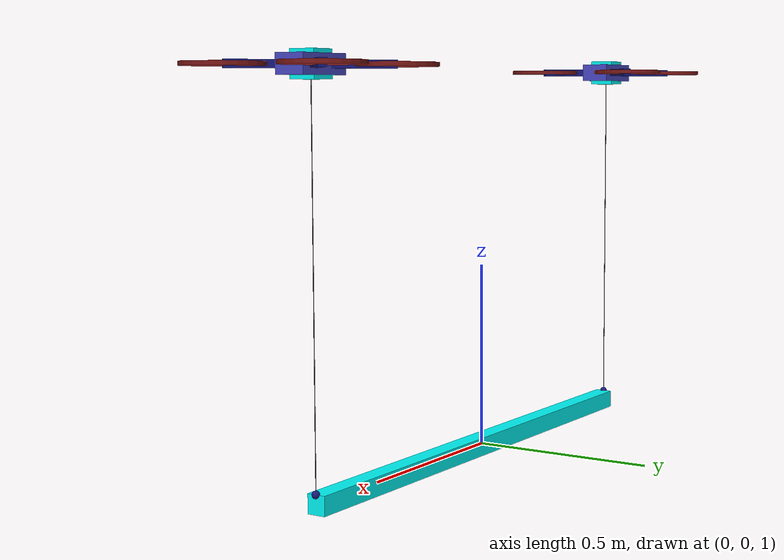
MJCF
<?xml version="1.0" ?>
<mujoco model="Quadcopter">
   <compiler angle="degree" coordinate="local" inertiafromgeom="true"/>
   <visual>
      <map fogstart="3.0" fogend="5.0" force="0.1" znear="0.1"/>
   </visual>
   <asset>
      <texture type="skybox" builtin="gradient" rgb1="1.0 1.0 1.0" rgb2="0.6 0.8 1.0" width="127" height="1278"/>
      <texture name="texplane" type="2d" builtin="checker" rgb1="0.2 0.3 0.4" rgb2=".1 0.15 0.2" width="512" height="512"/>
      <material name="MatPlane" texture="texplane" reflectance="0.5" texrepeat="1 1" texuniform="true"/>
   </asset>
   <worldbody>
      <geom name="ground" type="plane" size="5.0 5.0 0.02" friction="1.0" pos="0.0 0.0 0.0" rgba="0.8 0.9 0.8 1.0" material="MatPlane"/>
      <light directional="true" diffuse=".9 .9 .9" specular=".3 .3 .3" pos="0 0 4.0" dir="0 0.15 -1"/>
      <body name="pyld" pos="0.0 0.0 1.0" quat="1 0 0 0">
         <geom name="pyld" type="box" pos="0.0 0.0 0.0" quat="1 0 0 0" size="0.75 0.025 0.025" mass="1.0" density="1000" rgba="0.0 1 1 1.0"/>
         <site name="pyld_poc1" type="sphere" pos="0.75 0.0 0.025" quat="1 0 0 0" size="0.01" rgba="0.1 0.1 0.5 1.0"/>
         <site name="pyld_poc2" type="sphere" pos="-0.75 0.0 0.025" quat="1 0 0 0" size="0.01" rgba="0.1 0.1 0.5 1.0"/>
         <joint name="pyld_joint" type="free"/>
         <body name="cable_0" pos="0.75 0.0 0.535" quat="1 0 0 0">
            <joint name="cable_link_joint_0" type="ball" limited="false" pos="0.0 0.0 -0.5" damping="0.0001" stiffness="1e-05"/>
            <geom name="cable_cylinder_0" type="cylinder" size="0.001 0.5" pos="0.0 0.0 0.0" mass="0.001" density="50" rgba="0.2 0.2 0.2 1.0"/>
            <body name="quad0" pos="0.0 0.0 0.5" quat="1 0 0 0">
               <geom name="quad0_geom" type="box" pos="0.0 0.0 0.0" quat="1 0 0 0" size="0.08 0.04 0.025" mass="0.75" density="1000" rgba="0.3 0.3 0.8 1.0"/>
               <geom name="quad0_rotor_arm_geom_0" type="box" pos="0.0 0.0 0.0" quat="0.92388 0 0 0.382683" size="0.2 0.01 0.01" mass="0.01" density="1000" rgba="0.1 0.1 0.5 1.0"/>
               <geom name="quad0_rotor_prop_geom_0" type="cylinder" size="0.1 0.005" pos="0.1414213562373095 0.14142135623730953 0.0" mass="0.05" density="1000" rgba="0.5 0.1 0.1 1.0"/>
               <geom name="quad0_rotor_arm_geom_1" type="box" pos="0.0 0.0 0.0" quat="0.382683 0 0 0.92388" size="0.2 0.01 0.01" mass="0.01" density="1000" rgba="0.1 0.1 0.5 1.0"/>
               <geom name="quad0_rotor_prop_geom_1" type="cylinder" size="0.1 0.005" pos="-0.1414213562373095 0.14142135623730953 0.0" mass="0.05" density="1000" rgba="0.5 0.1 0.1 1.0"/>
               <geom name="quad0_rotor_arm_geom_2" type="box" pos="0.0 0.0 0.0" quat="-0.382683 0 0 0.92388" size="0.2 0.01 0.01" mass="0.01" density="1000" rgba="0.1 0.1 0.5 1.0"/>
               <geom name="quad0_rotor_prop_geom_2" type="cylinder" size="0.1 0.005" pos="-0.1414213562373095 -0.1414213562373095 0.0" mass="0.05" density="1000" rgba="0.5 0.1 0.1 1.0"/>
               <geom name="quad0_rotor_arm_geom_3" type="box" pos="0.0 0.0 0.0" quat="-0.92388 0 0 0.382683" size="0.2 0.01 0.01" mass="0.01" density="1000" rgba="0.1 0.1 0.5 1.0"/>
               <geom name="quad0_rotor_prop_geom_3" type="cylinder" size="0.1 0.005" pos="0.14142135623730948 -0.14142135623730956 0.0" mass="0.05" density="1000" rgba="0.5 0.1 0.1 1.0"/>
               <site name="quad0_end1" type="sphere" pos="0.0 0.0 0.0" quat="1 0 0 0" size="0.01" rgba="0.1 0.1 0.5 1.0"/>
               <site name="quad0_thrust" type="box" pos="0.0 0.0 0.0" quat="1 0 0 0" size="0.035 0.035 0.035" rgba="0.0 1 1 1.0"/>
               <site name="quad0_Mx" type="box" pos="0.0 0.0 0.0" quat="1 0 0 0" size="0.06 0.035 0.025" rgba="0.0 1 1 1.0"/>
               <site name="quad0_My" type="box" pos="0.0 0.0 0.0" quat="1 0 0 0" size="0.06 0.035 0.025" rgba="0.0 1 1 1.0"/>
               <site name="quad0_Mz" type="box" pos="0.0 0.0 0.0" quat="1 0 0 0" size="0.06 0.035 0.025" rgba="0.0 1 1 1.0"/>
               <joint name="cable_quad_joint_0" type="ball" limited="false" pos="0.0 0.0 0.0" damping="0.0001" stiffness="1e-05"/>
            </body>
         </body>
         <body name="cable_1" pos="-0.75 0.0 0.535" quat="1 0 0 0">
            <joint name="cable_link_joint_1" type="ball" limited="false" pos="0.0 0.0 -0.5" damping="1e-05" stiffness="1e-05"/>
            <geom name="cable_cylinder_1" type="cylinder" size="0.001 0.5" pos="0.0 0.0 0.0" mass="0.001" density="50" rgba="0.2 0.2 0.2 1.0"/>
            <body name="quad1" pos="0.0 0.0 0.5" quat="1 0 0 0">
               <geom name="quad1_geom" type="box" pos="0.0 0.0 0.0" quat="1 0 0 0" size="0.08 0.04 0.025" mass="0.75" density="1000" rgba="0.3 0.3 0.8 1.0"/>
               <geom name="quad1_rotor_arm_geom_0" type="box" pos="0.0 0.0 0.0" quat="0.92388 0 0 0.382683" size="0.2 0.01 0.01" mass="0.01" density="1000" rgba="0.1 0.1 0.5 1.0"/>
               <geom name="quad1_rotor_prop_geom_0" type="cylinder" size="0.1 0.005" pos="0.1414213562373095 0.14142135623730953 0.0" mass="0.05" density="1000" rgba="0.5 0.1 0.1 1.0"/>
               <geom name="quad1_rotor_arm_geom_1" type="box" pos="0.0 0.0 0.0" quat="0.382683 0 0 0.92388" size="0.2 0.01 0.01" mass="0.01" density="1000" rgba="0.1 0.1 0.5 1.0"/>
               <geom name="quad1_rotor_prop_geom_1" type="cylinder" size="0.1 0.005" pos="-0.1414213562373095 0.14142135623730953 0.0" mass="0.05" density="1000" rgba="0.5 0.1 0.1 1.0"/>
               <geom name="quad1_rotor_arm_geom_2" type="box" pos="0.0 0.0 0.0" quat="-0.382683 0 0 0.92388" size="0.2 0.01 0.01" mass="0.01" density="1000" rgba="0.1 0.1 0.5 1.0"/>
               <geom name="quad1_rotor_prop_geom_2" type="cylinder" size="0.1 0.005" pos="-0.1414213562373095 -0.1414213562373095 0.0" mass="0.05" density="1000" rgba="0.5 0.1 0.1 1.0"/>
               <geom name="quad1_rotor_arm_geom_3" type="box" pos="0.0 0.0 0.0" quat="-0.92388 0 0 0.382683" size="0.2 0.01 0.01" mass="0.01" density="1000" rgba="0.1 0.1 0.5 1.0"/>
               <geom name="quad1_rotor_prop_geom_3" type="cylinder" size="0.1 0.005" pos="0.14142135623730948 -0.14142135623730956 0.0" mass="0.05" density="1000" rgba="0.5 0.1 0.1 1.0"/>
               <site name="quad1_end1" type="sphere" pos="0.0 0.0 0.0" quat="1 0 0 0" size="0.01" rgba="0.1 0.1 0.5 1.0"/>
               <site name="quad1_thrust" type="box" pos="0.0 0.0 0.0" quat="1 0 0 0" size="0.035 0.035 0.035" rgba="0.0 1 1 1.0"/>
               <site name="quad1_Mx" type="box" pos="0.0 0.0 0.0" quat="1 0 0 0" size="0.06 0.035 0.025" rgba="0.0 1 1 1.0"/>
               <site name="quad1_My" type="box" pos="0.0 0.0 0.0" quat="1 0 0 0" size="0.06 0.035 0.025" rgba="0.0 1 1 1.0"/>
               <site name="quad1_Mz" type="box" pos="0.0 0.0 0.0" quat="1 0 0 0" size="0.06 0.035 0.025" rgba="0.0 1 1 1.0"/>
               <joint name="cable_quad_joint_1" type="ball" limited="false" pos="0.0 0.0 0.0" damping="0.0001" stiffness="1e-05"/>
            </body>
         </body>
      </body>
   </worldbody>
   <actuator>
      <motor ctrllimited="true" site="quad0_thrust" ctrlrange="0.0 30.0" gear="0.0 0.0 1.0 0.0 0.0 0.0"/>
      <motor ctrllimited="true" site="quad0_Mx" ctrlrange="-3.0 3.0" gear="0.0 0.0 0.0 1.0 0.0 0.0"/>
      <motor ctrllimited="true" site="quad0_My" ctrlrange="-3.0 3.0" gear="0.0 0.0 0.0 0.0 1.0 0.0"/>
      <motor ctrllimited="true" site="quad0_Mz" ctrlrange="-3.0 3.0" gear="0.0 0.0 0.0 0.0 0.0 1.0"/>
   </actuator>
   <actuator>
      <motor ctrllimited="true" site="quad1_thrust" ctrlrange="0.0 30.0" gear="0.0 0.0 1.0 0.0 0.0 0.0"/>
      <motor ctrllimited="true" site="quad1_Mx" ctrlrange="-3.0 3.0" gear="0.0 0.0 0.0 1.0 0.0 0.0"/>
      <motor ctrllimited="true" site="quad1_My" ctrlrange="-3.0 3.0" gear="0.0 0.0 0.0 0.0 1.0 0.0"/>
      <motor ctrllimited="true" site="quad1_Mz" ctrlrange="-3.0 3.0" gear="0.0 0.0 0.0 0.0 0.0 1.0"/>
   </actuator>
</mujoco>
